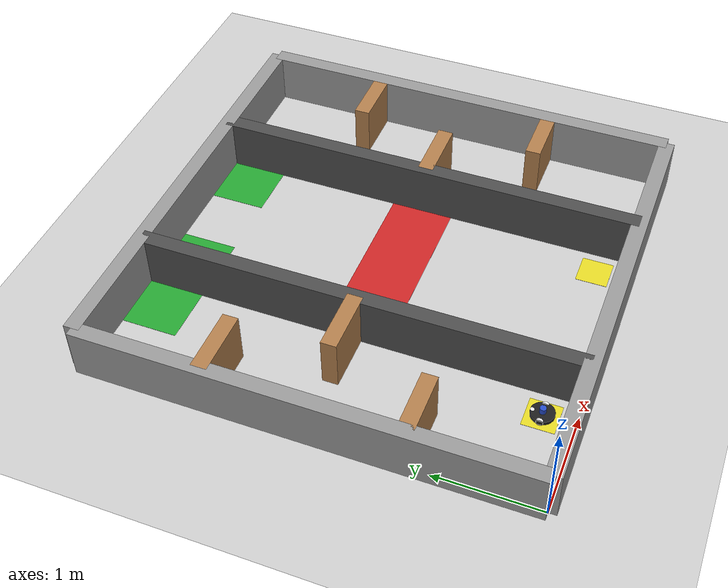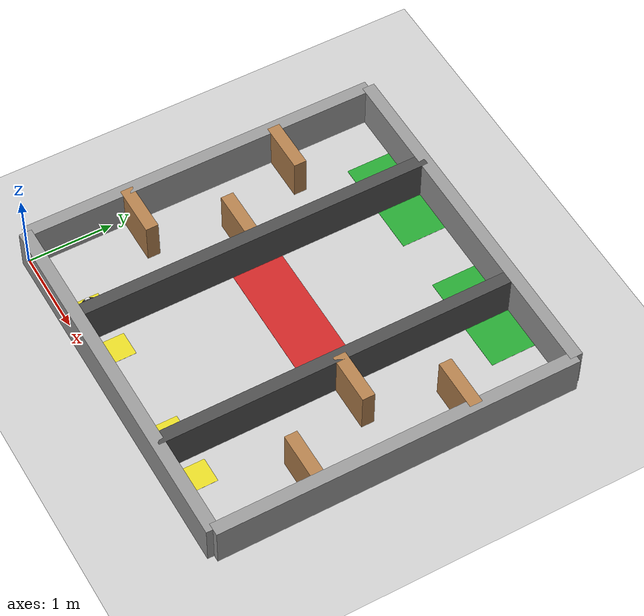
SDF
<?xml version="1.0" ?>
<sdf version='1.5'>
  <world name='default'>

    <plugin name="gazebo_ros_state" filename="libgazebo_ros_state.so">
      <ros>
        <namespace>/gazebo</namespace>
      </ros>
      <update_rate>10.0</update_rate>
    </plugin>

    <include>
      <uri>model://sun</uri>
    </include>

    <include>
      <uri>model://ground_plane</uri>
    </include>

    <physics type="ode">
      <real_time_update_rate>500.0</real_time_update_rate>
      <max_step_size>0.002</max_step_size>
      <real_time_factor>1</real_time_factor>
      <ode>
        <solver>
          <type>quick</type>
          <iters>150</iters>
          <precon_iters>0</precon_iters>
          <sor>1.400000</sor>
          <use_dynamic_moi_rescaling>1</use_dynamic_moi_rescaling>
        </solver>
        <constraints>
          <cfm>0.00001</cfm>
          <erp>0.2</erp>
          <contact_max_correcting_vel>2000.000000</contact_max_correcting_vel>
          <contact_surface_layer>0.01000</contact_surface_layer>
        </constraints>
      </ode>
    </physics>

    <scene>
      <ambient>0.4 0.4 0.4 1</ambient>
      <background>0.7 0.7 0.7 1</background>
      <shadows>true</shadows>
    </scene>

    <gui fullscreen='0'>
      <camera name='user_camera'>
        <pose>2.134 2.134 8.0 0 1.5708 1.5708</pose>
        <view_controller>orbit</view_controller>
      </camera>
    </gui>

    <model name='arena_walls'>
      <static>1</static>
      <pose>0 0 0 0 0 0</pose>

      <link name='wall_bottom'>
        <pose>2.134 0 0 0 0 0</pose>
        <collision name='collision'>
          <geometry><box><size>4.267 0.15 0.5</size></box></geometry>
          <pose>0 0 0.25 0 0 0</pose>
        </collision>
        <visual name='visual'>
          <pose>0 0 0.25 0 0 0</pose>
          <geometry><box><size>4.267 0.15 0.5</size></box></geometry>
          <material><script><uri>file://media/materials/scripts/gazebo.material</uri><name>Gazebo/Grey</name></script></material>
        </visual>
      </link>

      <link name='wall_top'>
        <pose>2.134 4.267 0 0 0 0</pose>
        <collision name='collision'>
          <geometry><box><size>4.267 0.15 0.5</size></box></geometry>
          <pose>0 0 0.25 0 0 0</pose>
        </collision>
        <visual name='visual'>
          <pose>0 0 0.25 0 0 0</pose>
          <geometry><box><size>4.267 0.15 0.5</size></box></geometry>
          <material><script><uri>file://media/materials/scripts/gazebo.material</uri><name>Gazebo/Grey</name></script></material>
        </visual>
      </link>

      <link name='wall_left'>
        <pose>0 2.134 0 0 0 0</pose>
        <collision name='collision'>
          <geometry><box><size>0.15 4.267 0.5</size></box></geometry>
          <pose>0 0 0.25 0 0 0</pose>
        </collision>
        <visual name='visual'>
          <pose>0 0 0.25 0 0 0</pose>
          <geometry><box><size>0.15 4.267 0.5</size></box></geometry>
          <material><script><uri>file://media/materials/scripts/gazebo.material</uri><name>Gazebo/Grey</name></script></material>
        </visual>
      </link>

      <link name='wall_right'>
        <pose>4.267 2.134 0 0 0 0</pose>
        <collision name='collision'>
          <geometry><box><size>0.15 4.267 0.5</size></box></geometry>
          <pose>0 0 0.25 0 0 0</pose>
        </collision>
        <visual name='visual'>
          <pose>0 0 0.25 0 0 0</pose>
          <geometry><box><size>0.15 4.267 0.5</size></box></geometry>
          <material><script><uri>file://media/materials/scripts/gazebo.material</uri><name>Gazebo/Grey</name></script></material>
        </visual>
      </link>

      <link name='divider_left'>
        <pose>1.219 2.1335 0 0 0 0</pose>
        <collision name='collision'>
          <geometry><box><size>0.15 4.267 0.5</size></box></geometry>
          <pose>0 0 0.25 0 0 0</pose>
        </collision>
        <visual name='visual'>
          <pose>0 0 0.25 0 0 0</pose>
          <geometry><box><size>0.15 4.267 0.5</size></box></geometry>
          <material><script><uri>file://media/materials/scripts/gazebo.material</uri><name>Gazebo/DarkGrey</name></script></material>
        </visual>
      </link>

      <link name='divider_right'>
        <pose>3.048 2.1335 0 0 0 0</pose>
        <collision name='collision'>
          <geometry><box><size>0.15 4.267 0.5</size></box></geometry>
          <pose>0 0 0.25 0 0 0</pose>
        </collision>
        <visual name='visual'>
          <pose>0 0 0.25 0 0 0</pose>
          <geometry><box><size>0.15 4.267 0.5</size></box></geometry>
          <material><script><uri>file://media/materials/scripts/gazebo.material</uri><name>Gazebo/DarkGrey</name></script></material>
        </visual>
      </link>

      <link name='lcoast_wall1'>
        <pose>0.305 1.219 0 0 0 0</pose>
        <collision name='collision'>
          <geometry><box><size>0.610 0.15 0.5</size></box></geometry>
          <pose>0 0 0.25 0 0 0</pose>
        </collision>
        <visual name='visual'>
          <pose>0 0 0.25 0 0 0</pose>
          <geometry><box><size>0.610 0.15 0.5</size></box></geometry>
          <material><script><uri>file://media/materials/scripts/gazebo.material</uri><name>Gazebo/Wood</name></script></material>
        </visual>
      </link>

      <link name='lcoast_wall2'>
        <pose>0.914 2.134 0 0 0 0</pose>
        <collision name='collision'>
          <geometry><box><size>0.610 0.15 0.5</size></box></geometry>
          <pose>0 0 0.25 0 0 0</pose>
        </collision>
        <visual name='visual'>
          <pose>0 0 0.25 0 0 0</pose>
          <geometry><box><size>0.610 0.15 0.5</size></box></geometry>
          <material><script><uri>file://media/materials/scripts/gazebo.material</uri><name>Gazebo/Wood</name></script></material>
        </visual>
      </link>

      <link name='lcoast_wall3'>
        <pose>0.305 3.048 0 0 0 0</pose>
        <collision name='collision'>
          <geometry><box><size>0.610 0.15 0.5</size></box></geometry>
          <pose>0 0 0.25 0 0 0</pose>
        </collision>
        <visual name='visual'>
          <pose>0 0 0.25 0 0 0</pose>
          <geometry><box><size>0.610 0.15 0.5</size></box></geometry>
          <material><script><uri>file://media/materials/scripts/gazebo.material</uri><name>Gazebo/Wood</name></script></material>
        </visual>
      </link>

      <link name='rcoast_wall1'>
        <pose>3.962 1.219 0 0 0 0</pose>
        <collision name='collision'>
          <geometry><box><size>0.610 0.15 0.5</size></box></geometry>
          <pose>0 0 0.25 0 0 0</pose>
        </collision>
        <visual name='visual'>
          <pose>0 0 0.25 0 0 0</pose>
          <geometry><box><size>0.610 0.15 0.5</size></box></geometry>
          <material><script><uri>file://media/materials/scripts/gazebo.material</uri><name>Gazebo/Wood</name></script></material>
        </visual>
      </link>

      <link name='rcoast_wall2'>
        <pose>3.353 2.134 0 0 0 0</pose>
        <collision name='collision'>
          <geometry><box><size>0.610 0.15 0.5</size></box></geometry>
          <pose>0 0 0.25 0 0 0</pose>
        </collision>
        <visual name='visual'>
          <pose>0 0 0.25 0 0 0</pose>
          <geometry><box><size>0.610 0.15 0.5</size></box></geometry>
          <material><script><uri>file://media/materials/scripts/gazebo.material</uri><name>Gazebo/Wood</name></script></material>
        </visual>
      </link>

      <link name='rcoast_wall3'>
        <pose>3.962 3.048 0 0 0 0</pose>
        <collision name='collision'>
          <geometry><box><size>0.610 0.15 0.5</size></box></geometry>
          <pose>0 0 0.25 0 0 0</pose>
        </collision>
        <visual name='visual'>
          <pose>0 0 0.25 0 0 0</pose>
          <geometry><box><size>0.610 0.15 0.5</size></box></geometry>
          <material><script><uri>file://media/materials/scripts/gazebo.material</uri><name>Gazebo/Wood</name></script></material>
        </visual>
      </link>
    </model>

    <model name='port_left_coastal'>
      <static>1</static>
      <link name='link'>
        <pose>0.914 3.962 0.001 0 0 0</pose>
        <visual name='visual'>
          <geometry><box><size>0.610 0.610 0.002</size></box></geometry>
          <material><script><uri>file://media/materials/scripts/gazebo.material</uri><name>Gazebo/Green</name></script></material>
        </visual>
      </link>
    </model>

    <model name='port_left_open'>
      <static>1</static>
      <link name='link'>
        <pose>1.524 3.962 0.001 0 0 0</pose>
        <visual name='visual'>
          <geometry><box><size>0.610 0.610 0.002</size></box></geometry>
          <material><script><uri>file://media/materials/scripts/gazebo.material</uri><name>Gazebo/Green</name></script></material>
        </visual>
      </link>
    </model>

    <model name='port_right_open'>
      <static>1</static>
      <link name='link'>
        <pose>2.743 3.962 0.001 0 0 0</pose>
        <visual name='visual'>
          <geometry><box><size>0.610 0.610 0.002</size></box></geometry>
          <material><script><uri>file://media/materials/scripts/gazebo.material</uri><name>Gazebo/Green</name></script></material>
        </visual>
      </link>
    </model>

    <model name='port_right_coastal'>
      <static>1</static>
      <link name='link'>
        <pose>3.353 3.962 0.001 0 0 0</pose>
        <visual name='visual'>
          <geometry><box><size>0.610 0.610 0.002</size></box></geometry>
          <material><script><uri>file://media/materials/scripts/gazebo.material</uri><name>Gazebo/Green</name></script></material>
        </visual>
      </link>
    </model>

    <model name='pirate_zone'>
      <static>1</static>
      <link name='link'>
        <pose>2.134 2.134 0.001 0 0 0</pose>
        <visual name='visual'>
          <geometry><box><size>1.829 0.610 0.002</size></box></geometry>
          <material><script><uri>file://media/materials/scripts/gazebo.material</uri><name>Gazebo/Red</name></script></material>
        </visual>
      </link>
    </model>

    <model name='deploy_left_coastal'>
      <static>1</static>
      <link name='link'>
        <pose>0.914 0.305 0.001 0 0 0</pose>
        <visual name='visual'>
          <geometry><box><size>0.300 0.300 0.002</size></box></geometry>
          <material><script><uri>file://media/materials/scripts/gazebo.material</uri><name>Gazebo/Yellow</name></script></material>
        </visual>
      </link>
    </model>

    <model name='deploy_left_open'>
      <static>1</static>
      <link name='link'>
        <pose>1.524 0.305 0.001 0 0 0</pose>
        <visual name='visual'>
          <geometry><box><size>0.300 0.300 0.002</size></box></geometry>
          <material><script><uri>file://media/materials/scripts/gazebo.material</uri><name>Gazebo/Yellow</name></script></material>
        </visual>
      </link>
    </model>

    <model name='deploy_right_open'>
      <static>1</static>
      <link name='link'>
        <pose>2.743 0.305 0.001 0 0 0</pose>
        <visual name='visual'>
          <geometry><box><size>0.300 0.300 0.002</size></box></geometry>
          <material><script><uri>file://media/materials/scripts/gazebo.material</uri><name>Gazebo/Yellow</name></script></material>
        </visual>
      </link>
    </model>

    <model name='deploy_right_coastal'>
      <static>1</static>
      <link name='link'>
        <pose>3.353 0.305 0.001 0 0 0</pose>
        <visual name='visual'>
          <geometry><box><size>0.300 0.300 0.002</size></box></geometry>
          <material><script><uri>file://media/materials/scripts/gazebo.material</uri><name>Gazebo/Yellow</name></script></material>
        </visual>
      </link>
    </model>

    <!-- ========== COURSE OBJECTS ========== -->
    <!-- Cargo and lifeboats are spawned dynamically via spawn_course_objects.py -->
    <!-- 4 cargo blocks (one per port, random 90deg rotation) -->
    <!-- 4 lifeboats (one per path, random position outside port zones) -->

    <!-- ========== ROBOT ========== -->
    <!-- Default spawn: left coastal position (x=3ft, y=1ft, facing north) -->
    <!-- Override with launch arg or respawn for different positions -->

    <include>
      <pose>0.914 0.305 0.0 0.0 0.0 1.5708</pose>
      <uri>model://eced3901bot_description</uri>
    </include>

  </world>
</sdf>

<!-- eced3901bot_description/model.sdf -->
<sdf version="1.5">
  <model name="eced3901bot">
  <static>false</static>

  <!-- ****************** ROBOT BASE FOOTPRINT ***************************  -->
  <pose>0.0 0.0 0.0 0.0 0.0 0.0</pose>
  <link name="base_footprint"/>

  <!-- ********************** ROBOT BASE *********************************  -->
  <link name="base_link">

    <inertial>
        <pose>0 0 0.035 0 0 0</pose>
        <inertia>
          <ixx>7.2397393e-01</ixx>
          <ixy>4.686399e-10</ixy>
          <ixz>-1.09525703e-08</ixz>
          <iyy>7.2397393e-01</iyy>
          <iyz>2.8582649e-09</iyz>
          <izz>6.53050163e-01</izz>
        </inertia>
        <mass>8.2573504e-01</mass>
    </inertial>

    <collision name="base_collision">
      <pose>0 0 0.2 0 0 0</pose>
      <geometry>
        <box>
          <size>0.22 0.22 0.11</size>
        </box>
      </geometry>
    </collision>

    <visual name="base_visual">
      <pose>0 0 0.035 0 0 0</pose>
      <geometry>
        <cylinder>
          <radius>0.11</radius>
          <length>0.0364</length>
        </cylinder>
      </geometry>
      <material>
            <script>
              <uri>file://media/materials/scripts/gazebo.material</uri>
              <name>Gazebo/Black</name>
            </script>
      </material>
    </visual>

    <visual name="base_pointfwd">
      <pose>0.09 0 0.053 0 0 0</pose>
      <geometry>
        <cylinder>
          <radius>0.02</radius>
          <length>0.001</length>
        </cylinder>
      </geometry>
      <material>
            <script>
              <uri>file://media/materials/scripts/gazebo.material</uri>
              <name>Gazebo/White</name>
            </script>
      </material>
    </visual>
  </link>

  <!-- *********************** IMU SENSOR SETUP **************************  -->
  <link name="imu_link">
    <gravity>true</gravity>
    <sensor name="bmb_imu" type="imu">
      <always_on>true</always_on>
      <update_rate>100</update_rate>
      <visualize>true</visualize>
      <imu>
        <orientation>
          <x>
            <noise type="gaussian">
              <mean>0.0</mean>
              <stddev>2e-3</stddev>
            </noise>
          </x>
          <y>
            <noise type="gaussian">
              <mean>0.0</mean>
              <stddev>2e-3</stddev>
            </noise>
          </y>
          <z>
            <noise type="gaussian">
              <mean>0.0</mean>
              <stddev>2e-3</stddev>
            </noise>
          </z>
        </orientation>
        <angular_velocity>
          <x>
            <noise type="gaussian">
              <mean>0.0</mean>
              <stddev>2e-4</stddev>
            </noise>
          </x>
          <y>
            <noise type="gaussian">
              <mean>0.0</mean>
              <stddev>2e-4</stddev>
            </noise>
          </y>
          <z>
            <noise type="gaussian">
              <mean>0.0</mean>
              <stddev>2e-4</stddev>
            </noise>
          </z>
        </angular_velocity>
        <linear_acceleration>
          <x>
            <noise type="gaussian">
              <mean>0.0</mean>
              <stddev>1.7e-2</stddev>
            </noise>
          </x>
          <y>
            <noise type="gaussian">
              <mean>0.0</mean>
              <stddev>1.7e-2</stddev>
            </noise>
          </y>
          <z>
            <noise type="gaussian">
              <mean>0.0</mean>
              <stddev>1.7e-2</stddev>
            </noise>
          </z>
        </linear_acceleration>
      </imu>
      <plugin name="basic_mobile_bot_imu" filename="libgazebo_ros_imu_sensor.so">
        <initial_orientation_as_reference>false</initial_orientation_as_reference>
        <frame_name>imu_link</frame_name>
        <ros>
          <namespace>/imu</namespace>
          <remapping>~/out:=data</remapping>
        </ros>
      </plugin>
    </sensor>
  </link>

  <!-- ****************************** LIDAR *****************************    -->
  <link name="lidar_link">
    <inertial>
      <pose>0 0 0.0815 0 0 0</pose>
      <inertia>
        <ixx>0.001</ixx>
        <ixy>0.000</ixy>
        <ixz>0.000</ixz>
        <iyy>0.001</iyy>
        <iyz>0.000</iyz>
        <izz>0.001</izz>
      </inertia>
      <mass>0.114</mass>
    </inertial>

    <collision name="lidar_collision">
      <pose>0 0 0.0815 0 0 0</pose>
      <geometry>
        <cylinder>
          <radius>0.030</radius>
          <length>0.057</length>
        </cylinder>
      </geometry>
    </collision>

    <visual name="lidar_visual">
      <pose>0 0 0.0815 0 0 0</pose>
      <geometry>
        <cylinder>
          <radius>0.030</radius>
          <length>0.057</length>
        </cylinder>
      </geometry>
      <material>
            <script>
              <uri>file://media/materials/scripts/gazebo.material</uri>
              <name>Gazebo/Blue</name>
            </script>
      </material>
    </visual>

    <sensor name="lidar" type="ray">
      <pose>0 0 0.11 0 0 0</pose>
      <always_on>true</always_on>
      <visualize>true</visualize>
      <update_rate>5</update_rate>
      <ray>
        <scan>
          <horizontal>
            <samples>360</samples>
            <resolution>1.000000</resolution>
            <min_angle>0.000000</min_angle>
            <max_angle>6.280000</max_angle>
          </horizontal>
        </scan>
        <range>
          <min>0.12</min>
          <max>5.0</max>
          <resolution>0.015</resolution>
        </range>
        <noise>
          <type>gaussian</type>
          <mean>0.0</mean>
          <stddev>0.01</stddev>
        </noise>
      </ray>
      <plugin name="scan" filename="libgazebo_ros_ray_sensor.so">
        <ros>
          <remapping>~/out:=scan</remapping>
        </ros>
        <output_type>sensor_msgs/LaserScan</output_type>
        <frame_name>lidar_link</frame_name>
      </plugin>
    </sensor>
  </link>

  <!-- *********************** DRIVE WHEELS ******************************  -->
  <link name="drivewhl_l_link">
    <pose>0 0.095 0.035 0 1.570796 1.570796</pose>

    <inertial>
        <inertia>
          <ixx>1.8158194e-03</ixx>
          <ixy>-9.3392e-12</ixy>
          <ixz>1.04909e-11</ixz>
          <iyy>3.2922126e-03</iyy>
          <iyz>5.75694e-11</iyz>
          <izz>1.8158194e-03</izz>
        </inertia>
        <mass>2.8498940e-02</mass>
    </inertial>

    <collision name="drivewhl_l_collision">
      <geometry>
        <cylinder>
          <radius>0.035</radius>
          <length>0.023</length>
        </cylinder>
      </geometry>
    </collision>

    <visual name="drivewhl_l_visual">
      <geometry>
        <cylinder>
          <radius>0.035</radius>
          <length>0.023</length>
        </cylinder>
      </geometry>
      <material>
            <script>
              <uri>file://media/materials/scripts/gazebo.material</uri>
              <name>Gazebo/White</name>
            </script>
      </material>
    </visual>
  </link>

  <link name="drivewhl_r_link">
    <pose>0 -0.095 0.035 0 1.570796 1.570796</pose>

    <inertial>
        <inertia>
          <ixx>1.8158194e-03</ixx>
          <ixy>-9.3392e-12</ixy>
          <ixz>1.04909e-11</ixz>
          <iyy>3.2922126e-03</iyy>
          <iyz>5.75694e-11</iyz>
          <izz>1.8158194e-03</izz>
        </inertia>
        <mass>2.8498940e-02</mass>
    </inertial>

    <collision name="drivewhl_r_collision">
      <geometry>
        <cylinder>
          <radius>0.035</radius>
          <length>0.023</length>
        </cylinder>
      </geometry>
    </collision>

    <visual name="drivewhl_r_visual">
      <geometry>
        <cylinder>
          <radius>0.035</radius>
          <length>0.023</length>
        </cylinder>
      </geometry>
      <material>
            <script>
              <uri>file://media/materials/scripts/gazebo.material</uri>
              <name>Gazebo/White</name>
            </script>
      </material>
    </visual>
  </link>

  <!-- *********************** CASTER WHEELS ******************************  -->
  <link name='front_caster'>
    <pose>0.09 0 0.012 0 0 0</pose>
    <inertial>
      <inertia>
        <ixx>0.001</ixx>
        <ixy>0.000</ixy>
        <ixz>0.000</ixz>
        <iyy>0.001</iyy>
        <iyz>0.000</iyz>
        <izz>0.001</izz>
      </inertia>
      <mass>0.005</mass>
    </inertial>
    <collision name='collision'>
      <geometry>
        <sphere>
          <radius>0.012</radius>
        </sphere>
      </geometry>
      <surface>
        <friction>
          <ode>
            <mu>0.01</mu>
            <mu2>0.01</mu2>
            <slip1>1.0</slip1>
            <slip2>1.0</slip2>
          </ode>
        </friction>
      </surface>
    </collision>
    <visual name="front_caster_visual">
      <geometry>
        <sphere>
          <radius>0.012</radius>
        </sphere>
      </geometry>
      <material>
            <script>
              <uri>file://media/materials/scripts/gazebo.material</uri>
              <name>Gazebo/White</name>
            </script>
      </material>
    </visual>
  </link>

  <link name='back_caster'>
    <pose>-0.09 0 0.015 0 0 0</pose>
    <inertial>
      <inertia>
        <ixx>0.001</ixx>
        <ixy>0.000</ixy>
        <ixz>0.000</ixz>
        <iyy>0.001</iyy>
        <iyz>0.000</iyz>
        <izz>0.001</izz>
      </inertia>
      <mass>0.005</mass>
    </inertial>
    <collision name='collision'>
      <geometry>
        <sphere>
          <radius>0.012</radius>
        </sphere>
      </geometry>
      <surface>
        <friction>
          <ode>
            <mu>0.01</mu>
            <mu2>0.01</mu2>
            <slip1>1.0</slip1>
            <slip2>1.0</slip2>
          </ode>
        </friction>
      </surface>
    </collision>
    <visual name="back_caster_visual">
      <geometry>
        <sphere>
          <radius>0.012</radius>
        </sphere>
      </geometry>
      <material>
            <script>
              <uri>file://media/materials/scripts/gazebo.material</uri>
              <name>Gazebo/White</name>
            </script>
      </material>
    </visual>
  </link>

  <!-- ************************ JOINTS ***********************************  -->
  <!-- Pose of the joint is the same as the child link frame -->
  <!-- Axis is the axis of rotation relative to the child link frame -->

  <joint name="base_joint" type="fixed">
    <parent>base_footprint</parent>
    <child>base_link</child>
    <pose>0 0 0 0 0 0</pose>
  </joint>

  <joint name="drivewhl_l_joint" type="revolute">
    <parent>base_link</parent>
    <child>drivewhl_l_link</child>
    <pose>0 0 0 0 0 0</pose>
    <axis>
      <xyz>0 0 1</xyz>
    </axis>
  </joint>

  <joint name="drivewhl_r_joint" type="revolute">
    <parent>base_link</parent>
    <child>drivewhl_r_link</child>
    <pose>0 0 0 0 0 0</pose>
    <axis>
      <xyz>0 0 1</xyz>
    </axis>
  </joint>

  <joint name='caster_joint_front' type='ball'>
    <parent>base_link</parent>
    <child>front_caster</child>
    <pose>0 0 0 0 0 0</pose>
  </joint>

  <joint name='caster_joint_back' type='ball'>
    <parent>base_link</parent>
    <child>back_caster</child>
    <pose>0 0 0 0 0 0</pose>
  </joint>

  <joint name="imu_joint" type="fixed">
    <parent>base_link</parent>
    <child>imu_link</child>
    <pose>0 0 0 0 0 0</pose>
  </joint>

  <joint name="lidar_joint" type="fixed">
    <parent>base_link</parent>
    <child>lidar_link</child>
    <pose>0 0 0 0 0 0</pose>
  </joint>

 <!-- *********************** WHEEL ODOMETRY ***************************    -->
  <plugin name="basic_mobile_bot_diff_drive" filename="libgazebo_ros_diff_drive.so">

    <update_rate>30</update_rate>

    <!-- wheels -->
    <left_joint>drivewhl_l_joint</left_joint>
    <right_joint>drivewhl_r_joint</right_joint>

    <!-- kinematics -->
    <wheel_separation>0.19</wheel_separation>
    <wheel_diameter>0.07</wheel_diameter>

    <!-- limits -->
    <max_wheel_torque>20</max_wheel_torque>
    <max_wheel_acceleration>1.0</max_wheel_acceleration>

    <!-- Receive velocity commands on this ROS topic -->
    <command_topic>cmd_vel</command_topic>

    <!-- output -->
    <publish_odom>true</publish_odom>
    <publish_odom_tf>true</publish_odom_tf>
    <publish_wheel_tf>false</publish_wheel_tf>

    <odometry_topic>odom</odometry_topic>
    <odometry_frame>odom</odometry_frame>
    <robot_base_frame>base_footprint</robot_base_frame>

    <!-- Odometry source, 0 for ENCODER, 1 for WORLD, defaults to WORLD -->
    <odometry_source>0</odometry_source>

  </plugin>

 <!-- *********************** JOINT STATE PUBLISHER *********************   -->

  <plugin name="basic_mobile_bot_joint_state" filename="libgazebo_ros_joint_state_publisher.so">
    <ros>
      <remapping>~/out:=joint_states</remapping>
    </ros>
    <update_rate>30</update_rate>
    <joint_name>drivewhl_l_joint</joint_name>
    <joint_name>drivewhl_r_joint</joint_name>
  </plugin>

  </model>
</sdf>
